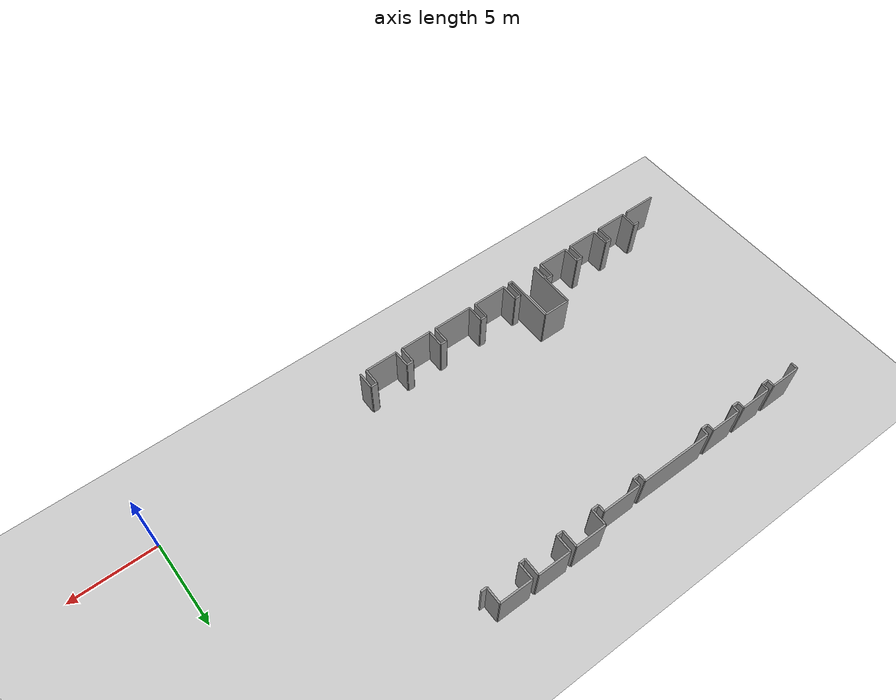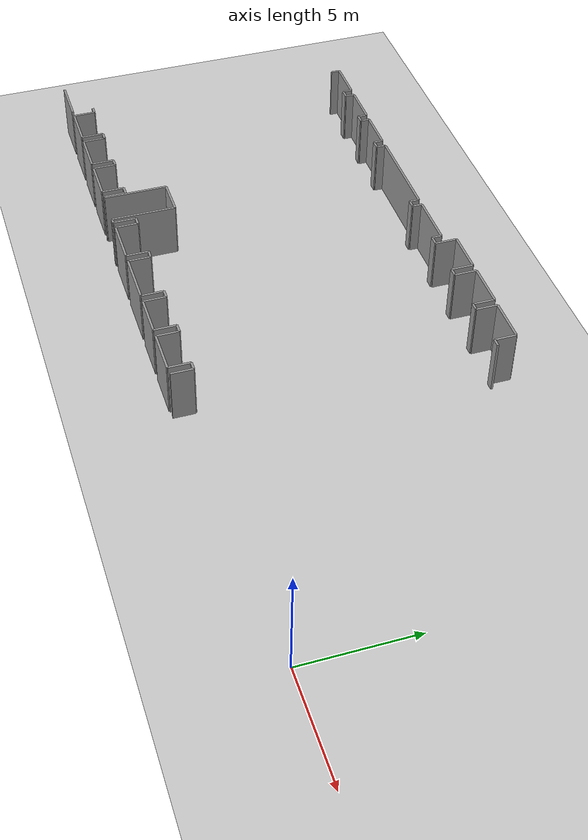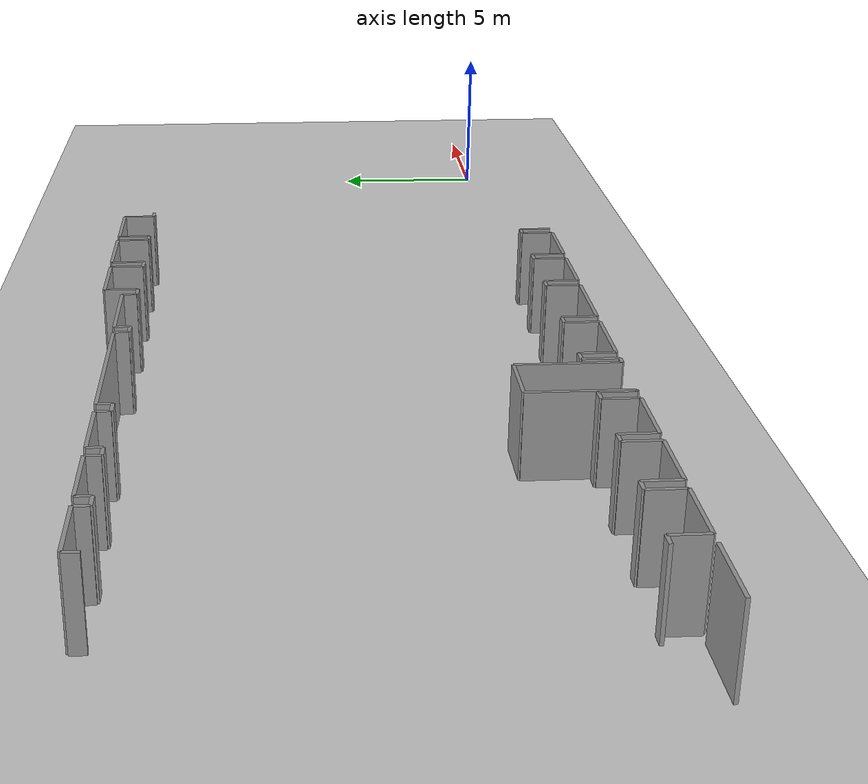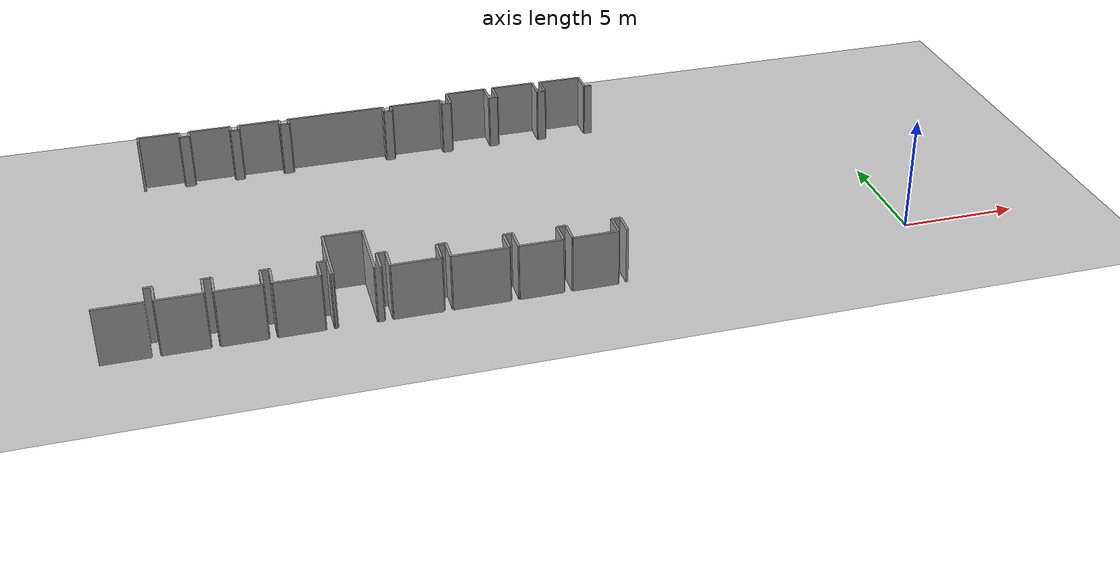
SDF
<sdf version="1.6">
 <world name="default">
  <model name="ground_plane">
   <static>1</static>
   <link name="link">
    <collision name="collision">
     <geometry><plane><normal>0 0 1</normal><size>100 100</size></plane></geometry>
     <surface><friction><ode><mu>100</mu><mu2>50</mu2></ode></friction></surface>
    </collision>
    <visual name="visual">
     <cast_shadows>0</cast_shadows>
     <geometry><plane><normal>0 0 1</normal><size>100 100</size></plane></geometry>
     <material>
      <script><uri>file://media/materials/scripts/gazebo.material</uri><name>Gazebo/Grey</name></script>
     </material>
    </visual>
   </link>
  </model>
  <model name="50010541">
   <static>1</static>
   <link name="Wall_9">
    <collision name="Wall_9_Collision">
     <geometry><box><size>0.973556929405 0.1 2.5</size></box></geometry>
     <pose>0.486778464702 0 1.25 0 0 0</pose>
    </collision>
    <visual name="Wall_9_Visual">
     <pose>0.486778464702 0 1.25 0 0 0</pose>
     <geometry><box><size>0.973556929405 0.1 2.5</size></box></geometry>
     <material>
      <script><uri>file://media/materials/scripts/gazebo.material</uri><name>Gazebo/Grey</name></script>
      <ambient>1 1 1 1</ambient>
     </material>
    </visual>
    <pose>40.0359260153 -14.0096225864 0 0 0 1.57079632679</pose>
   </link>
   <link name="Wall_10">
    <collision name="Wall_10_Collision">
     <geometry><box><size>0.37233569878 0.1 2.5</size></box></geometry>
     <pose>0.18616784939 0 1.25 0 0 0</pose>
    </collision>
    <visual name="Wall_10_Visual">
     <pose>0.18616784939 0 1.25 0 0 0</pose>
     <geometry><box><size>0.37233569878 0.1 2.5</size></box></geometry>
     <material>
      <script><uri>file://media/materials/scripts/gazebo.material</uri><name>Gazebo/Grey</name></script>
      <ambient>1 1 1 1</ambient>
     </material>
    </visual>
    <pose>40.0359260153 -13.036065657 0 0 0 3.14159265359</pose>
   </link>
   <link name="Wall_11">
    <collision name="Wall_11_Collision">
     <geometry><box><size>0.983077958184 0.1 2.5</size></box></geometry>
     <pose>0.491538979092 0 1.25 0 0 0</pose>
    </collision>
    <visual name="Wall_11_Visual">
     <pose>0.491538979092 0 1.25 0 0 0</pose>
     <geometry><box><size>0.983077958184 0.1 2.5</size></box></geometry>
     <material>
      <script><uri>file://media/materials/scripts/gazebo.material</uri><name>Gazebo/Grey</name></script>
      <ambient>1 1 1 1</ambient>
     </material>
    </visual>
    <pose>39.6635903165 -13.036065657 0 0 0 -1.57079632679</pose>
   </link>
   <link name="Wall_12">
    <collision name="Wall_12_Collision">
     <geometry><box><size>1.91385373161 0.1 2.5</size></box></geometry>
     <pose>0.956926865804 0 1.25 0 0 0</pose>
    </collision>
    <visual name="Wall_12_Visual">
     <pose>0.956926865804 0 1.25 0 0 0</pose>
     <geometry><box><size>1.91385373161 0.1 2.5</size></box></geometry>
     <material>
      <script><uri>file://media/materials/scripts/gazebo.material</uri><name>Gazebo/Grey</name></script>
      <ambient>1 1 1 1</ambient>
     </material>
    </visual>
    <pose>39.6635903165 -14.0191436152 0 0 0 3.14159265359</pose>
   </link>
   <link name="Wall_13">
    <collision name="Wall_13_Collision">
     <geometry><box><size>0.991583410559 0.1 2.5</size></box></geometry>
     <pose>0.49579170528 0 1.25 0 0 0</pose>
    </collision>
    <visual name="Wall_13_Visual">
     <pose>0.49579170528 0 1.25 0 0 0</pose>
     <geometry><box><size>0.991583410559 0.1 2.5</size></box></geometry>
     <material>
      <script><uri>file://media/materials/scripts/gazebo.material</uri><name>Gazebo/Grey</name></script>
      <ambient>1 1 1 1</ambient>
     </material>
    </visual>
    <pose>37.7497365849 -14.0191436152 0 0 0 1.57079632679</pose>
   </link>
   <link name="Wall_14">
    <collision name="Wall_14_Collision">
     <geometry><box><size>0.381856727559 0.1 2.5</size></box></geometry>
     <pose>0.190928363779 0 1.25 0 0 0</pose>
    </collision>
    <visual name="Wall_14_Visual">
     <pose>0.190928363779 0 1.25 0 0 0</pose>
     <geometry><box><size>0.381856727559 0.1 2.5</size></box></geometry>
     <material>
      <script><uri>file://media/materials/scripts/gazebo.material</uri><name>Gazebo/Grey</name></script>
      <ambient>1 1 1 1</ambient>
     </material>
    </visual>
    <pose>37.7497365849 -13.0275602046 0 0 0 3.14159265359</pose>
   </link>
   <link name="Wall_15">
    <collision name="Wall_15_Collision">
     <geometry><box><size>0.99183730466 0.1 2.5</size></box></geometry>
     <pose>0.49591865233 0 1.25 0 0 0</pose>
    </collision>
    <visual name="Wall_15_Visual">
     <pose>0.49591865233 0 1.25 0 0 0</pose>
     <geometry><box><size>0.99183730466 0.1 2.5</size></box></geometry>
     <material>
      <script><uri>file://media/materials/scripts/gazebo.material</uri><name>Gazebo/Grey</name></script>
      <ambient>1 1 1 1</ambient>
     </material>
    </visual>
    <pose>37.3678798573 -13.0275602046 0 0 0 -1.57079632679</pose>
   </link>
   <link name="Wall_16">
    <collision name="Wall_16_Collision">
     <geometry><box><size>1.82664110799 0.1 2.5</size></box></geometry>
     <pose>0.913320553997 0 1.25 0 0 0</pose>
    </collision>
    <visual name="Wall_16_Visual">
     <pose>0.913320553997 0 1.25 0 0 0</pose>
     <geometry><box><size>1.82664110799 0.1 2.5</size></box></geometry>
     <material>
      <script><uri>file://media/materials/scripts/gazebo.material</uri><name>Gazebo/Grey</name></script>
      <ambient>1 1 1 1</ambient>
     </material>
    </visual>
    <pose>37.3678798573 -14.0193975093 0 0 0 3.14159265359</pose>
   </link>
   <link name="Wall_17">
    <collision name="Wall_17_Collision">
     <geometry><box><size>1.00224696279 0.1 2.5</size></box></geometry>
     <pose>0.501123481396 0 1.25 0 0 0</pose>
    </collision>
    <visual name="Wall_17_Visual">
     <pose>0.501123481396 0 1.25 0 0 0</pose>
     <geometry><box><size>1.00224696279 0.1 2.5</size></box></geometry>
     <material>
      <script><uri>file://media/materials/scripts/gazebo.material</uri><name>Gazebo/Grey</name></script>
      <ambient>1 1 1 1</ambient>
     </material>
    </visual>
    <pose>35.5412387493 -14.0193975093 0 0 0 1.57079632679</pose>
   </link>
   <link name="Wall_18">
    <collision name="Wall_18_Collision">
     <geometry><box><size>0.373224328133 0.1 2.5</size></box></geometry>
     <pose>0.186612164066 0 1.25 0 0 0</pose>
    </collision>
    <visual name="Wall_18_Visual">
     <pose>0.186612164066 0 1.25 0 0 0</pose>
     <geometry><box><size>0.373224328133 0.1 2.5</size></box></geometry>
     <material>
      <script><uri>file://media/materials/scripts/gazebo.material</uri><name>Gazebo/Grey</name></script>
      <ambient>1 1 1 1</ambient>
     </material>
    </visual>
    <pose>35.5412387493 -13.0171505465 0 0 0 3.14159265359</pose>
   </link>
   <link name="Wall_19">
    <collision name="Wall_19_Collision">
     <geometry><box><size>0.998946339482 0.1 2.5</size></box></geometry>
     <pose>0.499473169741 0 1.25 0 0 0</pose>
    </collision>
    <visual name="Wall_19_Visual">
     <pose>0.499473169741 0 1.25 0 0 0</pose>
     <geometry><box><size>0.998946339482 0.1 2.5</size></box></geometry>
     <material>
      <script><uri>file://media/materials/scripts/gazebo.material</uri><name>Gazebo/Grey</name></script>
      <ambient>1 1 1 1</ambient>
     </material>
    </visual>
    <pose>35.1680144212 -13.0171505465 0 0 0 -1.57079632679</pose>
   </link>
   <link name="Wall_20">
    <collision name="Wall_20_Collision">
     <geometry><box><size>2.33798382695 0.1 2.5</size></box></geometry>
     <pose>1.16899191347 0 1.25 0 0 0</pose>
    </collision>
    <visual name="Wall_20_Visual">
     <pose>1.16899191347 0 1.25 0 0 0</pose>
     <geometry><box><size>2.33798382695 0.1 2.5</size></box></geometry>
     <material>
      <script><uri>file://media/materials/scripts/gazebo.material</uri><name>Gazebo/Grey</name></script>
      <ambient>1 1 1 1</ambient>
     </material>
    </visual>
    <pose>35.1680144212 -14.016096886 0 0 0 3.14159265359</pose>
   </link>
   <link name="Wall_21">
    <collision name="Wall_21_Collision">
     <geometry><box><size>0.998946339482 0.1 2.5</size></box></geometry>
     <pose>0.499473169741 0 1.25 0 0 0</pose>
    </collision>
    <visual name="Wall_21_Visual">
     <pose>0.499473169741 0 1.25 0 0 0</pose>
     <geometry><box><size>0.998946339482 0.1 2.5</size></box></geometry>
     <material>
      <script><uri>file://media/materials/scripts/gazebo.material</uri><name>Gazebo/Grey</name></script>
      <ambient>1 1 1 1</ambient>
     </material>
    </visual>
    <pose>32.8300305942 -14.016096886 0 0 0 1.57079632679</pose>
   </link>
   <link name="Wall_22">
    <collision name="Wall_22_Collision">
     <geometry><box><size>0.373224328133 0.1 2.5</size></box></geometry>
     <pose>0.186612164066 0 1.25 0 0 0</pose>
    </collision>
    <visual name="Wall_22_Visual">
     <pose>0.186612164066 0 1.25 0 0 0</pose>
     <geometry><box><size>0.373224328133 0.1 2.5</size></box></geometry>
     <material>
      <script><uri>file://media/materials/scripts/gazebo.material</uri><name>Gazebo/Grey</name></script>
      <ambient>1 1 1 1</ambient>
     </material>
    </visual>
    <pose>32.8300305942 -13.0171505465 0 0 0 3.14159265359</pose>
   </link>
   <link name="Wall_23">
    <collision name="Wall_23_Collision">
     <geometry><box><size>0.998946339482 0.1 2.5</size></box></geometry>
     <pose>0.499473169741 0 1.25 0 0 0</pose>
    </collision>
    <visual name="Wall_23_Visual">
     <pose>0.499473169741 0 1.25 0 0 0</pose>
     <geometry><box><size>0.998946339482 0.1 2.5</size></box></geometry>
     <material>
      <script><uri>file://media/materials/scripts/gazebo.material</uri><name>Gazebo/Grey</name></script>
      <ambient>1 1 1 1</ambient>
     </material>
    </visual>
    <pose>32.4568062661 -13.0171505465 0 0 0 -1.57079632679</pose>
   </link>
   <link name="Wall_24">
    <collision name="Wall_24_Collision">
     <geometry><box><size>2.01972757163 0.1 2.5</size></box></geometry>
     <pose>1.00986378581 0 1.25 0 0 0</pose>
    </collision>
    <visual name="Wall_24_Visual">
     <pose>1.00986378581 0 1.25 0 0 0</pose>
     <geometry><box><size>2.01972757163 0.1 2.5</size></box></geometry>
     <material>
      <script><uri>file://media/materials/scripts/gazebo.material</uri><name>Gazebo/Grey</name></script>
      <ambient>1 1 1 1</ambient>
     </material>
    </visual>
    <pose>32.4568062661 -14.016096886 0 0 0 3.14159265359</pose>
   </link>
   <link name="Wall_25">
    <collision name="Wall_25_Collision">
     <geometry><box><size>1.00440506265 0.1 2.5</size></box></geometry>
     <pose>0.502202531324 0 1.25 0 0 0</pose>
    </collision>
    <visual name="Wall_25_Visual">
     <pose>0.502202531324 0 1.25 0 0 0</pose>
     <geometry><box><size>1.00440506265 0.1 2.5</size></box></geometry>
     <material>
      <script><uri>file://media/materials/scripts/gazebo.material</uri><name>Gazebo/Grey</name></script>
      <ambient>1 1 1 1</ambient>
     </material>
    </visual>
    <pose>30.4370786945 -14.016096886 0 0 0 1.57079632679</pose>
   </link>
   <link name="Wall_26">
    <collision name="Wall_26_Collision">
     <geometry><box><size>0.367638657916 0.1 2.5</size></box></geometry>
     <pose>0.183819328958 0 1.25 0 0 0</pose>
    </collision>
    <visual name="Wall_26_Visual">
     <pose>0.183819328958 0 1.25 0 0 0</pose>
     <geometry><box><size>0.367638657916 0.1 2.5</size></box></geometry>
     <material>
      <script><uri>file://media/materials/scripts/gazebo.material</uri><name>Gazebo/Grey</name></script>
      <ambient>1 1 1 1</ambient>
     </material>
    </visual>
    <pose>30.4370786945 -13.0116918233 0 0 0 3.14159265359</pose>
   </link>
   <link name="Wall_27">
    <collision name="Wall_27_Collision">
     <geometry><box><size>1.02078123215 0.1 2.5</size></box></geometry>
     <pose>0.510390616074 0 1.25 0 0 0</pose>
    </collision>
    <visual name="Wall_27_Visual">
     <pose>0.510390616074 0 1.25 0 0 0</pose>
     <geometry><box><size>1.02078123215 0.1 2.5</size></box></geometry>
     <material>
      <script><uri>file://media/materials/scripts/gazebo.material</uri><name>Gazebo/Grey</name></script>
      <ambient>1 1 1 1</ambient>
     </material>
    </visual>
    <pose>30.0694400366 -13.0116918233 0 0 0 -1.57079632679</pose>
   </link>
   <link name="Wall_28">
    <collision name="Wall_28_Collision">
     <geometry><box><size>0.241580236883 0.1 2.5</size></box></geometry>
     <pose>0.120790118442 0 1.25 0 0 0</pose>
    </collision>
    <visual name="Wall_28_Visual">
     <pose>0.120790118442 0 1.25 0 0 0</pose>
     <geometry><box><size>0.241580236883 0.1 2.5</size></box></geometry>
     <material>
      <script><uri>file://media/materials/scripts/gazebo.material</uri><name>Gazebo/Grey</name></script>
      <ambient>1 1 1 1</ambient>
     </material>
    </visual>
    <pose>30.0694400366 -14.0324730555 0 0 0 3.14159265359</pose>
   </link>
   <link name="Wall_29">
    <collision name="Wall_29_Collision">
     <geometry><box><size>2.85935536288 0.1 2.5</size></box></geometry>
     <pose>1.42967768144 0 1.25 0 0 0</pose>
    </collision>
    <visual name="Wall_29_Visual">
     <pose>1.42967768144 0 1.25 0 0 0</pose>
     <geometry><box><size>2.85935536288 0.1 2.5</size></box></geometry>
     <material>
      <script><uri>file://media/materials/scripts/gazebo.material</uri><name>Gazebo/Grey</name></script>
      <ambient>1 1 1 1</ambient>
     </material>
    </visual>
    <pose>29.8278597997 -14.0324730555 0 0 0 1.57079632679</pose>
   </link>
   <link name="Wall_30">
    <collision name="Wall_30_Collision">
     <geometry><box><size>1.60803828723 0.1 2.5</size></box></geometry>
     <pose>0.804019143615 0 1.25 0 0 0</pose>
    </collision>
    <visual name="Wall_30_Visual">
     <pose>0.804019143615 0 1.25 0 0 0</pose>
     <geometry><box><size>1.60803828723 0.1 2.5</size></box></geometry>
     <material>
      <script><uri>file://media/materials/scripts/gazebo.material</uri><name>Gazebo/Grey</name></script>
      <ambient>1 1 1 1</ambient>
     </material>
    </visual>
    <pose>29.8278597997 -11.1731176926 0 0 0 3.14159265359</pose>
   </link>
   <link name="Wall_31">
    <collision name="Wall_31_Collision">
     <geometry><box><size>2.84843791655 0.1 2.5</size></box></geometry>
     <pose>1.42421895827 0 1.25 0 0 0</pose>
    </collision>
    <visual name="Wall_31_Visual">
     <pose>1.42421895827 0 1.25 0 0 0</pose>
     <geometry><box><size>2.84843791655 0.1 2.5</size></box></geometry>
     <material>
      <script><uri>file://media/materials/scripts/gazebo.material</uri><name>Gazebo/Grey</name></script>
      <ambient>1 1 1 1</ambient>
     </material>
    </visual>
    <pose>28.2198215124 -11.1731176926 0 0 0 -1.57079632679</pose>
   </link>
   <link name="Wall_32">
    <collision name="Wall_32_Collision">
     <geometry><box><size>0.0808652710954 0.1 2.5</size></box></geometry>
     <pose>0.0404326355477 0 1.25 0 0 0</pose>
    </collision>
    <visual name="Wall_32_Visual">
     <pose>0.0404326355477 0 1.25 0 0 0</pose>
     <geometry><box><size>0.0808652710954 0.1 2.5</size></box></geometry>
     <material>
      <script><uri>file://media/materials/scripts/gazebo.material</uri><name>Gazebo/Grey</name></script>
      <ambient>1 1 1 1</ambient>
     </material>
    </visual>
    <pose>28.2198215124 -14.0215556092 0 0 0 3.14159265359</pose>
   </link>
   <link name="Wall_33">
    <collision name="Wall_33_Collision">
     <geometry><box><size>0.990948675308 0.1 2.5</size></box></geometry>
     <pose>0.495474337654 0 1.25 0 0 0</pose>
    </collision>
    <visual name="Wall_33_Visual">
     <pose>0.495474337654 0 1.25 0 0 0</pose>
     <geometry><box><size>0.990948675308 0.1 2.5</size></box></geometry>
     <material>
      <script><uri>file://media/materials/scripts/gazebo.material</uri><name>Gazebo/Grey</name></script>
      <ambient>1 1 1 1</ambient>
     </material>
    </visual>
    <pose>28.1389562414 -14.0215556092 0 0 0 1.57079632679</pose>
   </link>
   <link name="Wall_34">
    <collision name="Wall_34_Collision">
     <geometry><box><size>0.378683051299 0.1 2.5</size></box></geometry>
     <pose>0.18934152565 0 1.25 0 0 0</pose>
    </collision>
    <visual name="Wall_34_Visual">
     <pose>0.18934152565 0 1.25 0 0 0</pose>
     <geometry><box><size>0.378683051299 0.1 2.5</size></box></geometry>
     <material>
      <script><uri>file://media/materials/scripts/gazebo.material</uri><name>Gazebo/Grey</name></script>
      <ambient>1 1 1 1</ambient>
     </material>
    </visual>
    <pose>28.1389562414 -13.0306069338 0 0 0 3.14159265359</pose>
   </link>
   <link name="Wall_35">
    <collision name="Wall_35_Collision">
     <geometry><box><size>0.990948675308 0.1 2.5</size></box></geometry>
     <pose>0.495474337654 0 1.25 0 0 0</pose>
    </collision>
    <visual name="Wall_35_Visual">
     <pose>0.495474337654 0 1.25 0 0 0</pose>
     <geometry><box><size>0.990948675308 0.1 2.5</size></box></geometry>
     <material>
      <script><uri>file://media/materials/scripts/gazebo.material</uri><name>Gazebo/Grey</name></script>
      <ambient>1 1 1 1</ambient>
     </material>
    </visual>
    <pose>27.7602731901 -13.0306069338 0 0 0 -1.57079632679</pose>
   </link>
   <link name="Wall_36">
    <collision name="Wall_36_Collision">
     <geometry><box><size>1.83044951951 0.1 2.5</size></box></geometry>
     <pose>0.915224759753 0 1.25 0 0 0</pose>
    </collision>
    <visual name="Wall_36_Visual">
     <pose>0.915224759753 0 1.25 0 0 0</pose>
     <geometry><box><size>1.83044951951 0.1 2.5</size></box></geometry>
     <material>
      <script><uri>file://media/materials/scripts/gazebo.material</uri><name>Gazebo/Grey</name></script>
      <ambient>1 1 1 1</ambient>
     </material>
    </visual>
    <pose>27.7602731901 -14.0215556092 0 0 0 3.14159265359</pose>
   </link>
   <link name="Wall_37">
    <collision name="Wall_37_Collision">
     <geometry><box><size>1.00986378581 0.1 2.5</size></box></geometry>
     <pose>0.504931892907 0 1.25 0 0 0</pose>
    </collision>
    <visual name="Wall_37_Visual">
     <pose>0.504931892907 0 1.25 0 0 0</pose>
     <geometry><box><size>1.00986378581 0.1 2.5</size></box></geometry>
     <material>
      <script><uri>file://media/materials/scripts/gazebo.material</uri><name>Gazebo/Grey</name></script>
      <ambient>1 1 1 1</ambient>
     </material>
    </visual>
    <pose>25.9298236705 -14.0215556092 0 0 0 1.57079632679</pose>
   </link>
   <link name="Wall_38">
    <collision name="Wall_38_Collision">
     <geometry><box><size>0.365988346261 0.1 2.5</size></box></geometry>
     <pose>0.18299417313 0 1.25 0 0 0</pose>
    </collision>
    <visual name="Wall_38_Visual">
     <pose>0.18299417313 0 1.25 0 0 0</pose>
     <geometry><box><size>0.365988346261 0.1 2.5</size></box></geometry>
     <material>
      <script><uri>file://media/materials/scripts/gazebo.material</uri><name>Gazebo/Grey</name></script>
      <ambient>1 1 1 1</ambient>
     </material>
    </visual>
    <pose>25.9298236705 -13.0116918233 0 0 0 3.14159265359</pose>
   </link>
   <link name="Wall_39">
    <collision name="Wall_39_Collision">
     <geometry><box><size>1.00986378581 0.1 2.5</size></box></geometry>
     <pose>0.504931892907 0 1.25 0 0 0</pose>
    </collision>
    <visual name="Wall_39_Visual">
     <pose>0.504931892907 0 1.25 0 0 0</pose>
     <geometry><box><size>1.00986378581 0.1 2.5</size></box></geometry>
     <material>
      <script><uri>file://media/materials/scripts/gazebo.material</uri><name>Gazebo/Grey</name></script>
      <ambient>1 1 1 1</ambient>
     </material>
    </visual>
    <pose>25.5638353243 -13.0116918233 0 0 0 -1.57079632679</pose>
   </link>
   <link name="Wall_40">
    <collision name="Wall_40_Collision">
     <geometry><box><size>1.82410216699 0.1 2.5</size></box></geometry>
     <pose>0.912051083493 0 1.25 0 0 0</pose>
    </collision>
    <visual name="Wall_40_Visual">
     <pose>0.912051083493 0 1.25 0 0 0</pose>
     <geometry><box><size>1.82410216699 0.1 2.5</size></box></geometry>
     <material>
      <script><uri>file://media/materials/scripts/gazebo.material</uri><name>Gazebo/Grey</name></script>
      <ambient>1 1 1 1</ambient>
     </material>
    </visual>
    <pose>25.5638353243 -14.0215556092 0 0 0 3.14159265359</pose>
   </link>
   <link name="Wall_41">
    <collision name="Wall_41_Collision">
     <geometry><box><size>1.0035164333 0.1 2.5</size></box></geometry>
     <pose>0.501758216648 0 1.25 0 0 0</pose>
    </collision>
    <visual name="Wall_41_Visual">
     <pose>0.501758216648 0 1.25 0 0 0</pose>
     <geometry><box><size>1.0035164333 0.1 2.5</size></box></geometry>
     <material>
      <script><uri>file://media/materials/scripts/gazebo.material</uri><name>Gazebo/Grey</name></script>
      <ambient>1 1 1 1</ambient>
     </material>
    </visual>
    <pose>23.7397331573 -14.0215556092 0 0 0 1.57079632679</pose>
   </link>
   <link name="Wall_42">
    <collision name="Wall_42_Collision">
     <geometry><box><size>0.37233569878 0.1 2.5</size></box></geometry>
     <pose>0.18616784939 0 1.25 0 0 0</pose>
    </collision>
    <visual name="Wall_42_Visual">
     <pose>0.18616784939 0 1.25 0 0 0</pose>
     <geometry><box><size>0.37233569878 0.1 2.5</size></box></geometry>
     <material>
      <script><uri>file://media/materials/scripts/gazebo.material</uri><name>Gazebo/Grey</name></script>
      <ambient>1 1 1 1</ambient>
     </material>
    </visual>
    <pose>23.7397331573 -13.0180391759 0 0 0 3.14159265359</pose>
   </link>
   <link name="Wall_43">
    <collision name="Wall_43_Collision">
     <geometry><box><size>0.997169080776 0.1 2.5</size></box></geometry>
     <pose>0.498584540388 0 1.25 0 0 0</pose>
    </collision>
    <visual name="Wall_43_Visual">
     <pose>0.498584540388 0 1.25 0 0 0</pose>
     <geometry><box><size>0.997169080776 0.1 2.5</size></box></geometry>
     <material>
      <script><uri>file://media/materials/scripts/gazebo.material</uri><name>Gazebo/Grey</name></script>
      <ambient>1 1 1 1</ambient>
     </material>
    </visual>
    <pose>23.3673974585 -13.0180391759 0 0 0 -1.57079632679</pose>
   </link>
   <link name="Wall_44">
    <collision name="Wall_44_Collision">
     <geometry><box><size>1.84301727749 0.1 2.5</size></box></geometry>
     <pose>0.921508638747 0 1.25 0 0 0</pose>
    </collision>
    <visual name="Wall_44_Visual">
     <pose>0.921508638747 0 1.25 0 0 0</pose>
     <geometry><box><size>1.84301727749 0.1 2.5</size></box></geometry>
     <material>
      <script><uri>file://media/materials/scripts/gazebo.material</uri><name>Gazebo/Grey</name></script>
      <ambient>1 1 1 1</ambient>
     </material>
    </visual>
    <pose>23.3673974585 -14.0152082566 0 0 0 3.14159265359</pose>
   </link>
   <link name="Wall_45">
    <collision name="Wall_45_Collision">
     <geometry><box><size>0.984601322788 0.1 2.5</size></box></geometry>
     <pose>0.492300661394 0 1.25 0 0 0</pose>
    </collision>
    <visual name="Wall_45_Visual">
     <pose>0.492300661394 0 1.25 0 0 0</pose>
     <geometry><box><size>0.984601322788 0.1 2.5</size></box></geometry>
     <material>
      <script><uri>file://media/materials/scripts/gazebo.material</uri><name>Gazebo/Grey</name></script>
      <ambient>1 1 1 1</ambient>
     </material>
    </visual>
    <pose>21.524380181 -14.0152082566 0 0 0 1.57079632679</pose>
   </link>
   <link name="Wall_46">
    <collision name="Wall_46_Collision">
     <geometry><box><size>0.347073235753 0.1 2.5</size></box></geometry>
     <pose>0.173536617877 0 1.25 0 0 0</pose>
    </collision>
    <visual name="Wall_46_Visual">
     <pose>0.173536617877 0 1.25 0 0 0</pose>
     <geometry><box><size>0.347073235753 0.1 2.5</size></box></geometry>
     <material>
      <script><uri>file://media/materials/scripts/gazebo.material</uri><name>Gazebo/Grey</name></script>
      <ambient>1 1 1 1</ambient>
     </material>
    </visual>
    <pose>21.524380181 -13.0306069338 0 0 0 3.14159265359</pose>
   </link>
   <link name="Wall_48">
    <collision name="Wall_48_Collision">
     <geometry><box><size>1.95815825219 0.1 2.5</size></box></geometry>
     <pose>0.979079126097 0 1.25 0 0 0</pose>
    </collision>
    <visual name="Wall_48_Visual">
     <pose>0.979079126097 0 1.25 0 0 0</pose>
     <geometry><box><size>1.95815825219 0.1 2.5</size></box></geometry>
     <material>
      <script><uri>file://media/materials/scripts/gazebo.material</uri><name>Gazebo/Grey</name></script>
      <ambient>1 1 1 1</ambient>
     </material>
    </visual>
    <pose>21.1773069453 -14.0152082566 0 0 0 3.14159265359</pose>
   </link>
   <link name="Wall_117">
    <collision name="Wall_117_Collision">
     <geometry><box><size>0.410165919795 0.1 2.5</size></box></geometry>
     <pose>0.205082959897 0 1.25 0 0 0</pose>
    </collision>
    <visual name="Wall_117_Visual">
     <pose>0.205082959897 0 1.25 0 0 0</pose>
     <geometry><box><size>0.410165919795 0.1 2.5</size></box></geometry>
     <material>
      <script><uri>file://media/materials/scripts/gazebo.material</uri><name>Gazebo/Grey</name></script>
      <ambient>1 1 1 1</ambient>
     </material>
    </visual>
    <pose>21.5559899966 -1.00719789776 0 0 0 1.57079632679</pose>
   </link>
   <link name="Wall_118">
    <collision name="Wall_118_Collision">
     <geometry><box><size>1.79249235144 0.1 2.5</size></box></geometry>
     <pose>0.89624617572 0 1.25 0 0 0</pose>
    </collision>
    <visual name="Wall_118_Visual">
     <pose>0.89624617572 0 1.25 0 0 0</pose>
     <geometry><box><size>1.79249235144 0.1 2.5</size></box></geometry>
     <material>
      <script><uri>file://media/materials/scripts/gazebo.material</uri><name>Gazebo/Grey</name></script>
      <ambient>1 1 1 1</ambient>
     </material>
    </visual>
    <pose>21.5559899966 -0.597031977962 0 0 0 0.0</pose>
   </link>
   <link name="Wall_119">
    <collision name="Wall_119_Collision">
     <geometry><box><size>0.410165919795 0.1 2.5</size></box></geometry>
     <pose>0.205082959897 0 1.25 0 0 0</pose>
    </collision>
    <visual name="Wall_119_Visual">
     <pose>0.205082959897 0 1.25 0 0 0</pose>
     <geometry><box><size>0.410165919795 0.1 2.5</size></box></geometry>
     <material>
      <script><uri>file://media/materials/scripts/gazebo.material</uri><name>Gazebo/Grey</name></script>
      <ambient>1 1 1 1</ambient>
     </material>
    </visual>
    <pose>23.348482348 -0.597031977962 0 0 0 -1.57079632679</pose>
   </link>
   <link name="Wall_120">
    <collision name="Wall_120_Collision">
     <geometry><box><size>0.410292866845 0.1 2.5</size></box></geometry>
     <pose>0.205146433423 0 1.25 0 0 0</pose>
    </collision>
    <visual name="Wall_120_Visual">
     <pose>0.205146433423 0 1.25 0 0 0</pose>
     <geometry><box><size>0.410292866845 0.1 2.5</size></box></geometry>
     <material>
      <script><uri>file://media/materials/scripts/gazebo.material</uri><name>Gazebo/Grey</name></script>
      <ambient>1 1 1 1</ambient>
     </material>
    </visual>
    <pose>23.348482348 -1.00719789776 0 0 0 0.0</pose>
   </link>
   <link name="Wall_121">
    <collision name="Wall_121_Collision">
     <geometry><box><size>0.410165919795 0.1 2.5</size></box></geometry>
     <pose>0.205082959897 0 1.25 0 0 0</pose>
    </collision>
    <visual name="Wall_121_Visual">
     <pose>0.205082959897 0 1.25 0 0 0</pose>
     <geometry><box><size>0.410165919795 0.1 2.5</size></box></geometry>
     <material>
      <script><uri>file://media/materials/scripts/gazebo.material</uri><name>Gazebo/Grey</name></script>
      <ambient>1 1 1 1</ambient>
     </material>
    </visual>
    <pose>23.7587752149 -1.00719789776 0 0 0 1.57079632679</pose>
   </link>
   <link name="Wall_122">
    <collision name="Wall_122_Collision">
     <geometry><box><size>1.8112805149 0.1 2.5</size></box></geometry>
     <pose>0.905640257449 0 1.25 0 0 0</pose>
    </collision>
    <visual name="Wall_122_Visual">
     <pose>0.905640257449 0 1.25 0 0 0</pose>
     <geometry><box><size>1.8112805149 0.1 2.5</size></box></geometry>
     <material>
      <script><uri>file://media/materials/scripts/gazebo.material</uri><name>Gazebo/Grey</name></script>
      <ambient>1 1 1 1</ambient>
     </material>
    </visual>
    <pose>23.7587752149 -0.597031977962 0 0 0 0.0</pose>
   </link>
   <link name="Wall_123">
    <collision name="Wall_123_Collision">
     <geometry><box><size>0.410165919795 0.1 2.5</size></box></geometry>
     <pose>0.205082959897 0 1.25 0 0 0</pose>
    </collision>
    <visual name="Wall_123_Visual">
     <pose>0.205082959897 0 1.25 0 0 0</pose>
     <geometry><box><size>0.410165919795 0.1 2.5</size></box></geometry>
     <material>
      <script><uri>file://media/materials/scripts/gazebo.material</uri><name>Gazebo/Grey</name></script>
      <ambient>1 1 1 1</ambient>
     </material>
    </visual>
    <pose>25.5700557298 -0.597031977962 0 0 0 -1.57079632679</pose>
   </link>
   <link name="Wall_124">
    <collision name="Wall_124_Collision">
     <geometry><box><size>0.37220875173 0.1 2.5</size></box></geometry>
     <pose>0.186104375865 0 1.25 0 0 0</pose>
    </collision>
    <visual name="Wall_124_Visual">
     <pose>0.186104375865 0 1.25 0 0 0</pose>
     <geometry><box><size>0.37220875173 0.1 2.5</size></box></geometry>
     <material>
      <script><uri>file://media/materials/scripts/gazebo.material</uri><name>Gazebo/Grey</name></script>
      <ambient>1 1 1 1</ambient>
     </material>
    </visual>
    <pose>25.5700557298 -1.00719789776 0 0 0 0.0</pose>
   </link>
   <link name="Wall_125">
    <collision name="Wall_125_Collision">
     <geometry><box><size>0.404453302528 0.1 2.5</size></box></geometry>
     <pose>0.202226651264 0 1.25 0 0 0</pose>
    </collision>
    <visual name="Wall_125_Visual">
     <pose>0.202226651264 0 1.25 0 0 0</pose>
     <geometry><box><size>0.404453302528 0.1 2.5</size></box></geometry>
     <material>
      <script><uri>file://media/materials/scripts/gazebo.material</uri><name>Gazebo/Grey</name></script>
      <ambient>1 1 1 1</ambient>
     </material>
    </visual>
    <pose>25.9422644815 -1.00719789776 0 0 0 1.57079632679</pose>
   </link>
   <link name="Wall_126">
    <collision name="Wall_126_Collision">
     <geometry><box><size>1.82207101418 0.1 2.5</size></box></geometry>
     <pose>0.91103550709 0 1.25 0 0 0</pose>
    </collision>
    <visual name="Wall_126_Visual">
     <pose>0.91103550709 0 1.25 0 0 0</pose>
     <geometry><box><size>1.82207101418 0.1 2.5</size></box></geometry>
     <material>
      <script><uri>file://media/materials/scripts/gazebo.material</uri><name>Gazebo/Grey</name></script>
      <ambient>1 1 1 1</ambient>
     </material>
    </visual>
    <pose>25.9422644815 -0.602744595229 0 0 0 0.0</pose>
   </link>
   <link name="Wall_127">
    <collision name="Wall_127_Collision">
     <geometry><box><size>0.406103614183 0.1 2.5</size></box></geometry>
     <pose>0.203051807091 0 1.25 0 0 0</pose>
    </collision>
    <visual name="Wall_127_Visual">
     <pose>0.203051807091 0 1.25 0 0 0</pose>
     <geometry><box><size>0.406103614183 0.1 2.5</size></box></geometry>
     <material>
      <script><uri>file://media/materials/scripts/gazebo.material</uri><name>Gazebo/Grey</name></script>
      <ambient>1 1 1 1</ambient>
     </material>
    </visual>
    <pose>27.7643354957 -0.602744595229 0 0 0 -1.57079632679</pose>
   </link>
   <link name="Wall_128">
    <collision name="Wall_128_Collision">
     <geometry><box><size>0.395186167849 0.1 2.5</size></box></geometry>
     <pose>0.197593083925 0 1.25 0 0 0</pose>
    </collision>
    <visual name="Wall_128_Visual">
     <pose>0.197593083925 0 1.25 0 0 0</pose>
     <geometry><box><size>0.395186167849 0.1 2.5</size></box></geometry>
     <material>
      <script><uri>file://media/materials/scripts/gazebo.material</uri><name>Gazebo/Grey</name></script>
      <ambient>1 1 1 1</ambient>
     </material>
    </visual>
    <pose>27.7643354957 -1.00884820941 0 0 0 0.0</pose>
   </link>
   <link name="Wall_129">
    <collision name="Wall_129_Collision">
     <geometry><box><size>0.417148007566 0.1 2.5</size></box></geometry>
     <pose>0.208574003783 0 1.25 0 0 0</pose>
    </collision>
    <visual name="Wall_129_Visual">
     <pose>0.208574003783 0 1.25 0 0 0</pose>
     <geometry><box><size>0.417148007566 0.1 2.5</size></box></geometry>
     <material>
      <script><uri>file://media/materials/scripts/gazebo.material</uri><name>Gazebo/Grey</name></script>
      <ambient>1 1 1 1</ambient>
     </material>
    </visual>
    <pose>28.1595216635 -1.00884820941 0 0 0 1.57079632679</pose>
   </link>
   <link name="Wall_130">
    <collision name="Wall_130_Collision">
     <geometry><box><size>4.30909067828 0.1 2.5</size></box></geometry>
     <pose>2.15454533914 0 1.25 0 0 0</pose>
    </collision>
    <visual name="Wall_130_Visual">
     <pose>2.15454533914 0 1.25 0 0 0</pose>
     <geometry><box><size>4.30909067828 0.1 2.5</size></box></geometry>
     <material>
      <script><uri>file://media/materials/scripts/gazebo.material</uri><name>Gazebo/Grey</name></script>
      <ambient>1 1 1 1</ambient>
     </material>
    </visual>
    <pose>28.1595216635 -0.591700201846 0 0 0 0.0</pose>
   </link>
   <link name="Wall_131">
    <collision name="Wall_131_Collision">
     <geometry><box><size>0.42184504843 0.1 2.5</size></box></geometry>
     <pose>0.210922524215 0 1.25 0 0 0</pose>
    </collision>
    <visual name="Wall_131_Visual">
     <pose>0.210922524215 0 1.25 0 0 0</pose>
     <geometry><box><size>0.42184504843 0.1 2.5</size></box></geometry>
     <material>
      <script><uri>file://media/materials/scripts/gazebo.material</uri><name>Gazebo/Grey</name></script>
      <ambient>1 1 1 1</ambient>
     </material>
    </visual>
    <pose>32.4686123418 -0.591700201846 0 0 0 -1.57079632679</pose>
   </link>
   <link name="Wall_132">
    <collision name="Wall_132_Collision">
     <geometry><box><size>0.366115293311 0.1 2.5</size></box></geometry>
     <pose>0.183057646656 0 1.25 0 0 0</pose>
    </collision>
    <visual name="Wall_132_Visual">
     <pose>0.183057646656 0 1.25 0 0 0</pose>
     <geometry><box><size>0.366115293311 0.1 2.5</size></box></geometry>
     <material>
      <script><uri>file://media/materials/scripts/gazebo.material</uri><name>Gazebo/Grey</name></script>
      <ambient>1 1 1 1</ambient>
     </material>
    </visual>
    <pose>32.4686123418 -1.01354525028 0 0 0 0.0</pose>
   </link>
   <link name="Wall_133">
    <collision name="Wall_133_Collision">
     <geometry><box><size>0.435555329872 0.1 2.5</size></box></geometry>
     <pose>0.217777664936 0 1.25 0 0 0</pose>
    </collision>
    <visual name="Wall_133_Visual">
     <pose>0.217777664936 0 1.25 0 0 0</pose>
     <geometry><box><size>0.435555329872 0.1 2.5</size></box></geometry>
     <material>
      <script><uri>file://media/materials/scripts/gazebo.material</uri><name>Gazebo/Grey</name></script>
      <ambient>1 1 1 1</ambient>
     </material>
    </visual>
    <pose>32.8347276351 -1.01354525028 0 0 0 1.57079632679</pose>
   </link>
   <link name="Wall_134">
    <collision name="Wall_134_Collision">
     <geometry><box><size>2.31627588133 0.1 2.5</size></box></geometry>
     <pose>1.15813794066 0 1.25 0 0 0</pose>
    </collision>
    <visual name="Wall_134_Visual">
     <pose>1.15813794066 0 1.25 0 0 0</pose>
     <geometry><box><size>2.31627588133 0.1 2.5</size></box></geometry>
     <material>
      <script><uri>file://media/materials/scripts/gazebo.material</uri><name>Gazebo/Grey</name></script>
      <ambient>1 1 1 1</ambient>
     </material>
    </visual>
    <pose>32.8347276351 -0.577989920404 0 0 0 0.0</pose>
   </link>
   <link name="Wall_135">
    <collision name="Wall_135_Collision">
     <geometry><box><size>0.422860624833 0.1 2.5</size></box></geometry>
     <pose>0.211430312417 0 1.25 0 0 0</pose>
    </collision>
    <visual name="Wall_135_Visual">
     <pose>0.211430312417 0 1.25 0 0 0</pose>
     <geometry><box><size>0.422860624833 0.1 2.5</size></box></geometry>
     <material>
      <script><uri>file://media/materials/scripts/gazebo.material</uri><name>Gazebo/Grey</name></script>
      <ambient>1 1 1 1</ambient>
     </material>
    </visual>
    <pose>35.1510035164 -0.577989920404 0 0 0 -1.57079632679</pose>
   </link>
   <link name="Wall_136">
    <collision name="Wall_136_Collision">
     <geometry><box><size>0.410292866845 0.1 2.5</size></box></geometry>
     <pose>0.205146433423 0 1.25 0 0 0</pose>
    </collision>
    <visual name="Wall_136_Visual">
     <pose>0.205146433423 0 1.25 0 0 0</pose>
     <geometry><box><size>0.410292866845 0.1 2.5</size></box></geometry>
     <material>
      <script><uri>file://media/materials/scripts/gazebo.material</uri><name>Gazebo/Grey</name></script>
      <ambient>1 1 1 1</ambient>
     </material>
    </visual>
    <pose>35.1510035164 -1.00085054524 0 0 0 0.0</pose>
   </link>
   <link name="Wall_137">
    <collision name="Wall_137_Collision">
     <geometry><box><size>0.97190661775 0.1 2.5</size></box></geometry>
     <pose>0.485953308875 0 1.25 0 0 0</pose>
    </collision>
    <visual name="Wall_137_Visual">
     <pose>0.485953308875 0 1.25 0 0 0</pose>
     <geometry><box><size>0.97190661775 0.1 2.5</size></box></geometry>
     <material>
      <script><uri>file://media/materials/scripts/gazebo.material</uri><name>Gazebo/Grey</name></script>
      <ambient>1 1 1 1</ambient>
     </material>
    </visual>
    <pose>35.5612963833 -1.00085054524 0 0 0 1.57079632679</pose>
   </link>
   <link name="Wall_138">
    <collision name="Wall_138_Collision">
     <geometry><box><size>1.82397521994 0.1 2.5</size></box></geometry>
     <pose>0.911987609968 0 1.25 0 0 0</pose>
    </collision>
    <visual name="Wall_138_Visual">
     <pose>0.911987609968 0 1.25 0 0 0</pose>
     <geometry><box><size>1.82397521994 0.1 2.5</size></box></geometry>
     <material>
      <script><uri>file://media/materials/scripts/gazebo.material</uri><name>Gazebo/Grey</name></script>
      <ambient>1 1 1 1</ambient>
     </material>
    </visual>
    <pose>35.5612963833 -0.0289439274879 0 0 0 0.0</pose>
   </link>
   <link name="Wall_139">
    <collision name="Wall_139_Collision">
     <geometry><box><size>0.97190661775 0.1 2.5</size></box></geometry>
     <pose>0.485953308875 0 1.25 0 0 0</pose>
    </collision>
    <visual name="Wall_139_Visual">
     <pose>0.485953308875 0 1.25 0 0 0</pose>
     <geometry><box><size>0.97190661775 0.1 2.5</size></box></geometry>
     <material>
      <script><uri>file://media/materials/scripts/gazebo.material</uri><name>Gazebo/Grey</name></script>
      <ambient>1 1 1 1</ambient>
     </material>
    </visual>
    <pose>37.3852716032 -0.0289439274879 0 0 0 -1.57079632679</pose>
   </link>
   <link name="Wall_140">
    <collision name="Wall_140_Collision">
     <geometry><box><size>0.37233569878 0.1 2.5</size></box></geometry>
     <pose>0.18616784939 0 1.25 0 0 0</pose>
    </collision>
    <visual name="Wall_140_Visual">
     <pose>0.18616784939 0 1.25 0 0 0</pose>
     <geometry><box><size>0.37233569878 0.1 2.5</size></box></geometry>
     <material>
      <script><uri>file://media/materials/scripts/gazebo.material</uri><name>Gazebo/Grey</name></script>
      <ambient>1 1 1 1</ambient>
     </material>
    </visual>
    <pose>37.3852716032 -1.00085054524 0 0 0 0.0</pose>
   </link>
   <link name="Wall_141">
    <collision name="Wall_141_Collision">
     <geometry><box><size>0.984601322788 0.1 2.5</size></box></geometry>
     <pose>0.492300661394 0 1.25 0 0 0</pose>
    </collision>
    <visual name="Wall_141_Visual">
     <pose>0.492300661394 0 1.25 0 0 0</pose>
     <geometry><box><size>0.984601322788 0.1 2.5</size></box></geometry>
     <material>
      <script><uri>file://media/materials/scripts/gazebo.material</uri><name>Gazebo/Grey</name></script>
      <ambient>1 1 1 1</ambient>
     </material>
    </visual>
    <pose>37.757607302 -1.00085054524 0 0 0 1.57079632679</pose>
   </link>
   <link name="Wall_142">
    <collision name="Wall_142_Collision">
     <geometry><box><size>1.94394018255 0.1 2.5</size></box></geometry>
     <pose>0.971970091275 0 1.25 0 0 0</pose>
    </collision>
    <visual name="Wall_142_Visual">
     <pose>0.971970091275 0 1.25 0 0 0</pose>
     <geometry><box><size>1.94394018255 0.1 2.5</size></box></geometry>
     <material>
      <script><uri>file://media/materials/scripts/gazebo.material</uri><name>Gazebo/Grey</name></script>
      <ambient>1 1 1 1</ambient>
     </material>
    </visual>
    <pose>37.757607302 -0.0162492224493 0 0 0 0.0</pose>
   </link>
   <link name="Wall_143">
    <collision name="Wall_143_Collision">
     <geometry><box><size>0.9720335648 0.1 2.5</size></box></geometry>
     <pose>0.4860167824 0 1.25 0 0 0</pose>
    </collision>
    <visual name="Wall_143_Visual">
     <pose>0.4860167824 0 1.25 0 0 0</pose>
     <geometry><box><size>0.9720335648 0.1 2.5</size></box></geometry>
     <material>
      <script><uri>file://media/materials/scripts/gazebo.material</uri><name>Gazebo/Grey</name></script>
      <ambient>1 1 1 1</ambient>
     </material>
    </visual>
    <pose>39.7015474845 -0.0162492224493 0 0 0 -1.57079632679</pose>
   </link>
   <link name="Wall_144">
    <collision name="Wall_144_Collision">
     <geometry><box><size>0.347200182804 0.1 2.5</size></box></geometry>
     <pose>0.173600091402 0 1.25 0 0 0</pose>
    </collision>
    <visual name="Wall_144_Visual">
     <pose>0.173600091402 0 1.25 0 0 0</pose>
     <geometry><box><size>0.347200182804 0.1 2.5</size></box></geometry>
     <material>
      <script><uri>file://media/materials/scripts/gazebo.material</uri><name>Gazebo/Grey</name></script>
      <ambient>1 1 1 1</ambient>
     </material>
    </visual>
    <pose>39.7015474845 -0.988282787249 0 0 0 0.0</pose>
   </link>
   <link name="Wall_145">
    <collision name="Wall_145_Collision">
     <geometry><box><size>0.952991507242 0.1 2.5</size></box></geometry>
     <pose>0.476495753621 0 1.25 0 0 0</pose>
    </collision>
    <visual name="Wall_145_Visual">
     <pose>0.476495753621 0 1.25 0 0 0</pose>
     <geometry><box><size>0.952991507242 0.1 2.5</size></box></geometry>
     <material>
      <script><uri>file://media/materials/scripts/gazebo.material</uri><name>Gazebo/Grey</name></script>
      <ambient>1 1 1 1</ambient>
     </material>
    </visual>
    <pose>40.0487476673 -0.988282787249 0 0 0 1.57079632679</pose>
   </link>
   <link name="Wall_146">
    <collision name="Wall_146_Collision">
     <geometry><box><size>1.91867771952 0.1 2.5</size></box></geometry>
     <pose>0.959338859762 0 1.25 0 0 0</pose>
    </collision>
    <visual name="Wall_146_Visual">
     <pose>0.959338859762 0 1.25 0 0 0</pose>
     <geometry><box><size>1.91867771952 0.1 2.5</size></box></geometry>
     <material>
      <script><uri>file://media/materials/scripts/gazebo.material</uri><name>Gazebo/Grey</name></script>
      <ambient>1 1 1 1</ambient>
     </material>
    </visual>
    <pose>40.0487476673 -0.0352912800071 0 0 0 0.0</pose>
   </link>
   <link name="Wall_147">
    <collision name="Wall_147_Collision">
     <geometry><box><size>0.952991507242 0.1 2.5</size></box></geometry>
     <pose>0.476495753621 0 1.25 0 0 0</pose>
    </collision>
    <visual name="Wall_147_Visual">
     <pose>0.476495753621 0 1.25 0 0 0</pose>
     <geometry><box><size>0.952991507242 0.1 2.5</size></box></geometry>
     <material>
      <script><uri>file://media/materials/scripts/gazebo.material</uri><name>Gazebo/Grey</name></script>
      <ambient>1 1 1 1</ambient>
     </material>
    </visual>
    <pose>41.9674253869 -0.0352912800071 0 0 0 -1.57079632679</pose>
   </link>
   <link name="Wall_148">
    <collision name="Wall_148_Collision">
     <geometry><box><size>0.340852830285 0.1 2.5</size></box></geometry>
     <pose>0.170426415142 0 1.25 0 0 0</pose>
    </collision>
    <visual name="Wall_148_Visual">
     <pose>0.170426415142 0 1.25 0 0 0</pose>
     <geometry><box><size>0.340852830285 0.1 2.5</size></box></geometry>
     <material>
      <script><uri>file://media/materials/scripts/gazebo.material</uri><name>Gazebo/Grey</name></script>
      <ambient>1 1 1 1</ambient>
     </material>
    </visual>
    <pose>41.9674253869 -0.988282787249 0 0 0 0.0</pose>
   </link>
   <pose>-52.95 13.0612481434 0 0 0 0</pose>
  </model>
 </world>
</sdf>
